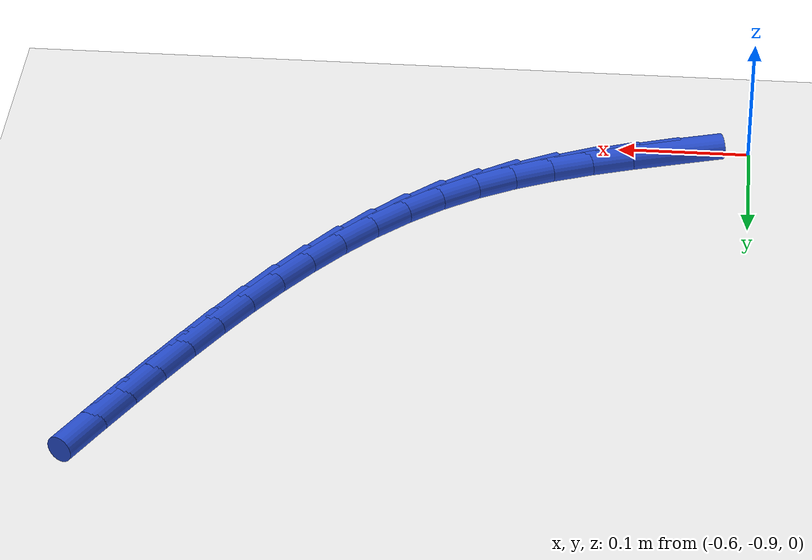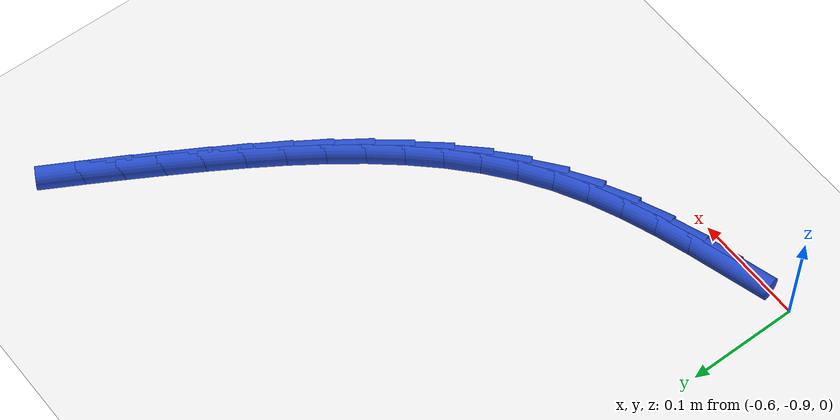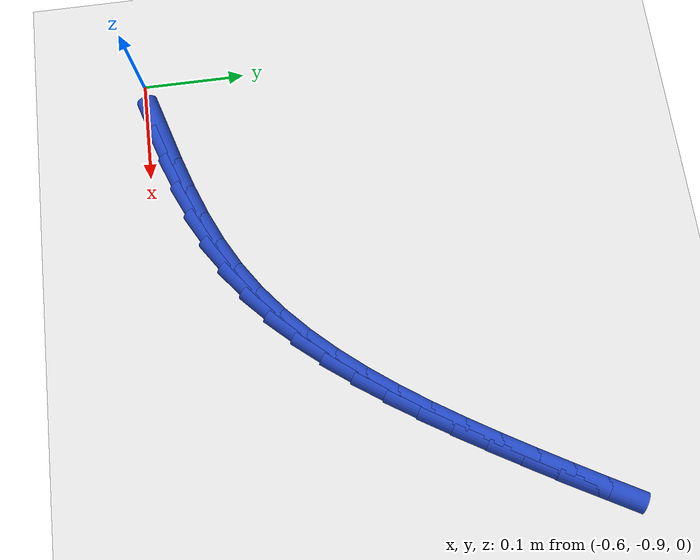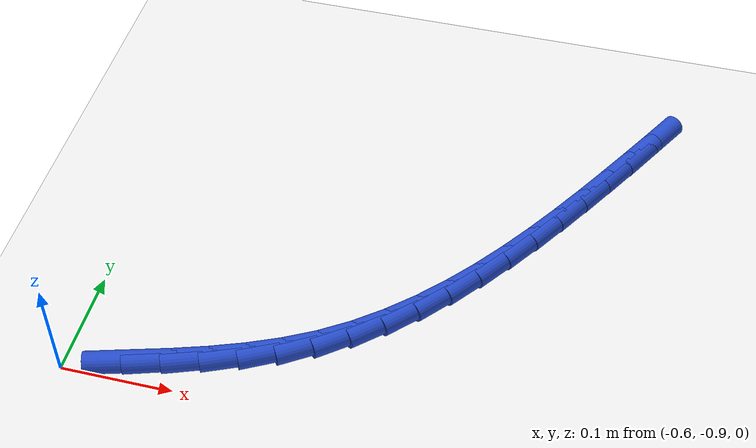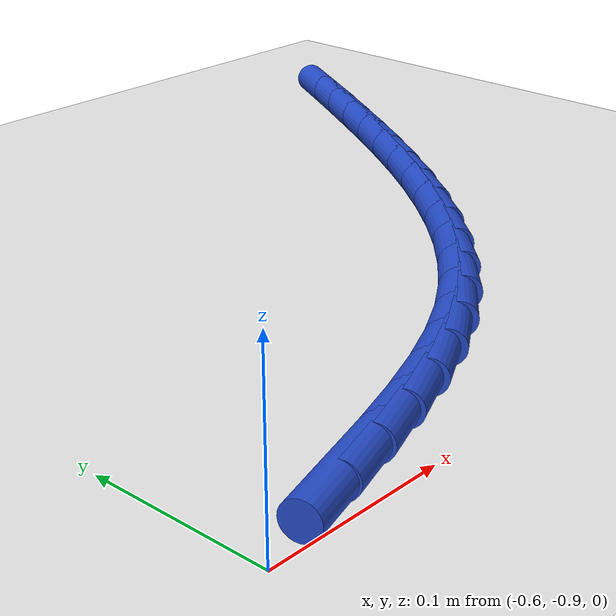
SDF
<sdf version="1.6">
 <world name="default">
  <model name="ground_plane">
   <static>1</static>
   <link name="link">
    <collision name="collision">
     <geometry><plane><normal>0 0 1</normal><size>100 100</size></plane></geometry>
     <surface><friction><ode><mu>100</mu><mu2>50</mu2></ode></friction></surface>
    </collision>
    <visual name="visual">
     <cast_shadows>0</cast_shadows>
     <geometry><plane><normal>0 0 1</normal><size>100 100</size></plane></geometry>
     <material>
      <script><uri>file://media/materials/scripts/gazebo.material</uri><name>Gazebo/WhiteGlow</name></script>
     </material>
    </visual>
   </link>
  </model>
  <model name="line">
   <link name="link_176">
    <pose>-0.5409161402496794 -0.885495965084273 0.01 0 1.57 0.2864638151743868</pose>
    <collision name="collision">
     <geometry><cylinder><radius>0.01</radius><length>0.08</length></cylinder></geometry>
    </collision>
    <visual name="visual">
     <material>
      <script><name>Gazebo/Blue</name><uri>file://media/materials/scripts/gazebo.material</uri></script>
     </material>
     <geometry><cylinder><radius>0.01</radius><length>0.08</length></cylinder></geometry>
    </visual>
   </link>
   <link name="link_177">
    <pose>-0.5096242819206165 -0.8762784554500996 0.01 0 1.57 0.316282709273341</pose>
    <collision name="collision">
     <geometry><cylinder><radius>0.01</radius><length>0.08</length></cylinder></geometry>
    </collision>
    <visual name="visual">
     <material>
      <script><name>Gazebo/Blue</name><uri>file://media/materials/scripts/gazebo.material</uri></script>
     </material>
     <geometry><cylinder><radius>0.01</radius><length>0.08</length></cylinder></geometry>
    </visual>
   </link>
   <link name="link_178">
    <pose>-0.4789442618969522 -0.8662378377417971 0.01 0 1.57 0.3610281910672212</pose>
    <collision name="collision">
     <geometry><cylinder><radius>0.01</radius><length>0.08</length></cylinder></geometry>
    </collision>
    <visual name="visual">
     <material>
      <script><name>Gazebo/Blue</name><uri>file://media/materials/scripts/gazebo.material</uri></script>
     </material>
     <geometry><cylinder><radius>0.01</radius><length>0.08</length></cylinder></geometry>
    </visual>
   </link>
   <link name="link_179">
    <pose>-0.4490998774673804 -0.8549692795048199 0.01 0 1.57 0.42135360491734347</pose>
    <collision name="collision">
     <geometry><cylinder><radius>0.01</radius><length>0.08</length></cylinder></geometry>
    </collision>
    <visual name="visual">
     <material>
      <script><name>Gazebo/Blue</name><uri>file://media/materials/scripts/gazebo.material</uri></script>
     </material>
     <geometry><cylinder><radius>0.01</radius><length>0.08</length></cylinder></geometry>
    </visual>
   </link>
   <link name="link_180">
    <pose>-0.42031492592059516 -0.8420679482846242 0.01 0 1.57 0.49760754054311473</pose>
    <collision name="collision">
     <geometry><cylinder><radius>0.01</radius><length>0.08</length></cylinder></geometry>
    </collision>
    <visual name="visual">
     <material>
      <script><name>Gazebo/Blue</name><uri>file://media/materials/scripts/gazebo.material</uri></script>
     </material>
     <geometry><cylinder><radius>0.01</radius><length>0.08</length></cylinder></geometry>
    </visual>
   </link>
   <link name="link_181">
    <pose>-0.39281320454529034 -0.8271290116266645 0.01 0 1.57 0.5873241635454027</pose>
    <collision name="collision">
     <geometry><cylinder><radius>0.01</radius><length>0.08</length></cylinder></geometry>
    </collision>
    <visual name="visual">
     <material>
      <script><name>Gazebo/Blue</name><uri>file://media/materials/scripts/gazebo.material</uri></script>
     </material>
     <geometry><cylinder><radius>0.01</radius><length>0.08</length></cylinder></geometry>
    </visual>
   </link>
   <link name="link_182">
    <pose>-0.36678890644811346 -0.8098049710387377 0.01 0 1.57 0.6743145113161969</pose>
    <collision name="collision">
     <geometry><cylinder><radius>0.01</radius><length>0.08</length></cylinder></geometry>
    </collision>
    <visual name="visual">
     <material>
      <script><name>Gazebo/Blue</name><uri>file://media/materials/scripts/gazebo.material</uri></script>
     </material>
     <geometry><cylinder><radius>0.01</radius><length>0.08</length></cylinder></geometry>
    </visual>
   </link>
   <link name="link_183">
    <pose>-0.342220023732289 -0.7901670411742691 0.01 0 1.57 0.751211237294414</pose>
    <collision name="collision">
     <geometry><cylinder><radius>0.01</radius><length>0.08</length></cylinder></geometry>
    </collision>
    <visual name="visual">
     <material>
      <script><name>Gazebo/Blue</name><uri>file://media/materials/scripts/gazebo.material</uri></script>
     </material>
     <geometry><cylinder><radius>0.01</radius><length>0.08</length></cylinder></geometry>
    </visual>
   </link>
   <link name="link_184">
    <pose>-0.3189886517725436 -0.7684721584003227 0.01 0 1.57 0.8179506878559867</pose>
    <collision name="collision">
     <geometry><cylinder><radius>0.01</radius><length>0.08</length></cylinder></geometry>
    </collision>
    <visual name="visual">
     <material>
      <script><name>Gazebo/Blue</name><uri>file://media/materials/scripts/gazebo.material</uri></script>
     </material>
     <geometry><cylinder><radius>0.01</radius><length>0.08</length></cylinder></geometry>
    </visual>
   </link>
   <link name="link_185">
    <pose>-0.29697645472939005 -0.7449780942098677 0.01 0 1.57 0.8749167171711764</pose>
    <collision name="collision">
     <geometry><cylinder><radius>0.01</radius><length>0.08</length></cylinder></geometry>
    </collision>
    <visual name="visual">
     <material>
      <script><name>Gazebo/Blue</name><uri>file://media/materials/scripts/gazebo.material</uri></script>
     </material>
     <geometry><cylinder><radius>0.01</radius><length>0.08</length></cylinder></geometry>
    </visual>
   </link>
   <link name="link_186">
    <pose>-0.2760650967633419 -0.7199426200958738 0.01 0 1.57 0.9227025722594415</pose>
    <collision name="collision">
     <geometry><cylinder><radius>0.01</radius><length>0.08</length></cylinder></geometry>
    </collision>
    <visual name="visual">
     <material>
      <script><name>Gazebo/Blue</name><uri>file://media/materials/scripts/gazebo.material</uri></script>
     </material>
     <geometry><cylinder><radius>0.01</radius><length>0.08</length></cylinder></geometry>
    </visual>
   </link>
   <link name="link_187">
    <pose>-0.25613624203491275 -0.6936235075513119 0.01 0 1.57 0.9619577481060254</pose>
    <collision name="collision">
     <geometry><cylinder><radius>0.01</radius><length>0.08</length></cylinder></geometry>
    </collision>
    <visual name="visual">
     <material>
      <script><name>Gazebo/Blue</name><uri>file://media/materials/scripts/gazebo.material</uri></script>
     </material>
     <geometry><cylinder><radius>0.01</radius><length>0.08</length></cylinder></geometry>
    </visual>
   </link>
   <link name="link_188">
    <pose>-0.23707155470461572 -0.6662785280691509 0.01 0 1.57 0.9932877560168861</pose>
    <collision name="collision">
     <geometry><cylinder><radius>0.01</radius><length>0.08</length></cylinder></geometry>
    </collision>
    <visual name="visual">
     <material>
      <script><name>Gazebo/Blue</name><uri>file://media/materials/scripts/gazebo.material</uri></script>
     </material>
     <geometry><cylinder><radius>0.01</radius><length>0.08</length></cylinder></geometry>
    </visual>
   </link>
   <link name="link_189">
    <pose>-0.21875269893296412 -0.6381654531423607 0.01 0 1.57 1.017193485843103</pose>
    <collision name="collision">
     <geometry><cylinder><radius>0.01</radius><length>0.08</length></cylinder></geometry>
    </collision>
    <visual name="visual">
     <material>
      <script><name>Gazebo/Blue</name><uri>file://media/materials/scripts/gazebo.material</uri></script>
     </material>
     <geometry><cylinder><radius>0.01</radius><length>0.08</length></cylinder></geometry>
    </visual>
   </link>
   <link name="link_190">
    <pose>-0.20106133888047223 -0.6095420542639124 0.01 0 1.57 1.0340355989263295</pose>
    <collision name="collision">
     <geometry><cylinder><radius>0.01</radius><length>0.08</length></cylinder></geometry>
    </collision>
    <visual name="visual">
     <material>
      <script><name>Gazebo/Blue</name><uri>file://media/materials/scripts/gazebo.material</uri></script>
     </material>
     <geometry><cylinder><radius>0.01</radius><length>0.08</length></cylinder></geometry>
    </visual>
   </link>
   <link name="link_191">
    <pose>-0.18387913870765304 -0.5806661029267755 0.01 0 1.57 1.0441219351029887</pose>
    <collision name="collision">
     <geometry><cylinder><radius>0.01</radius><length>0.08</length></cylinder></geometry>
    </collision>
    <visual name="visual">
     <material>
      <script><name>Gazebo/Blue</name><uri>file://media/materials/scripts/gazebo.material</uri></script>
     </material>
     <geometry><cylinder><radius>0.01</radius><length>0.08</length></cylinder></geometry>
    </visual>
   </link>
   <link name="link_192">
    <pose>-0.16708994709005262 -0.5517918246246784 0.01 0 1.57 1.0517796640459929</pose>
    <collision name="collision">
     <geometry><cylinder><radius>0.01</radius><length>0.08</length></cylinder></geometry>
    </collision>
    <visual name="visual">
     <material>
      <script><name>Gazebo/Blue</name><uri>file://media/materials/scripts/gazebo.material</uri></script>
     </material>
     <geometry><cylinder><radius>0.01</radius><length>0.08</length></cylinder></geometry>
    </visual>
   </link>
   <link name="link_193">
    <pose>-0.1506626484992694 -0.5230354110709539 0.01 0 1.57 1.0626185709378528</pose>
    <collision name="collision">
     <geometry><cylinder><radius>0.01</radius><length>0.08</length></cylinder></geometry>
    </collision>
    <visual name="visual">
     <material>
      <script><name>Gazebo/Blue</name><uri>file://media/materials/scripts/gazebo.material</uri></script>
     </material>
     <geometry><cylinder><radius>0.01</radius><length>0.08</length></cylinder></geometry>
    </visual>
   </link>
  </model>
 </world>
</sdf>
